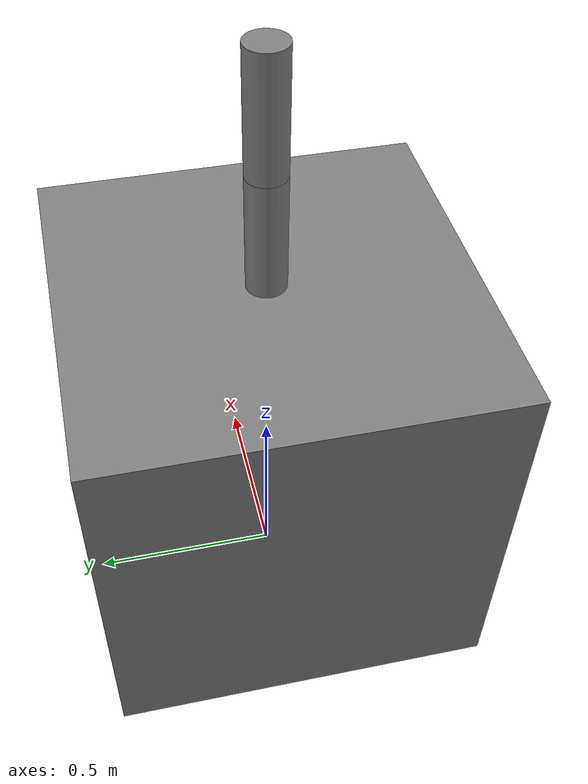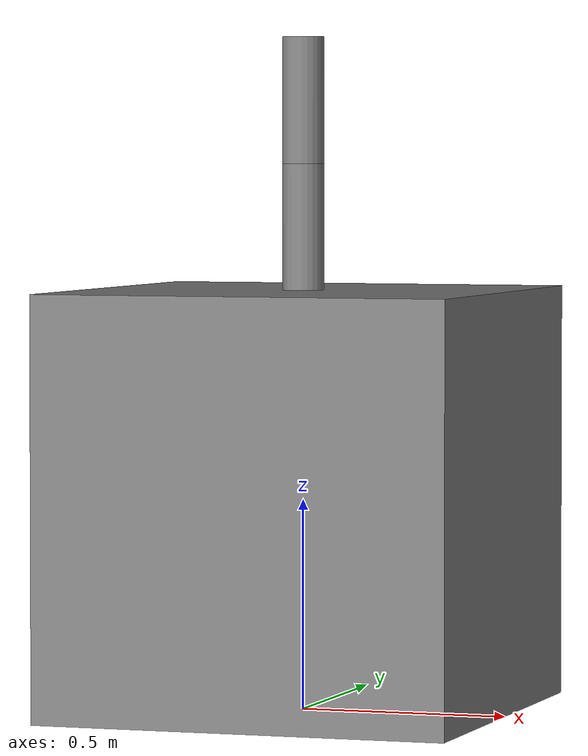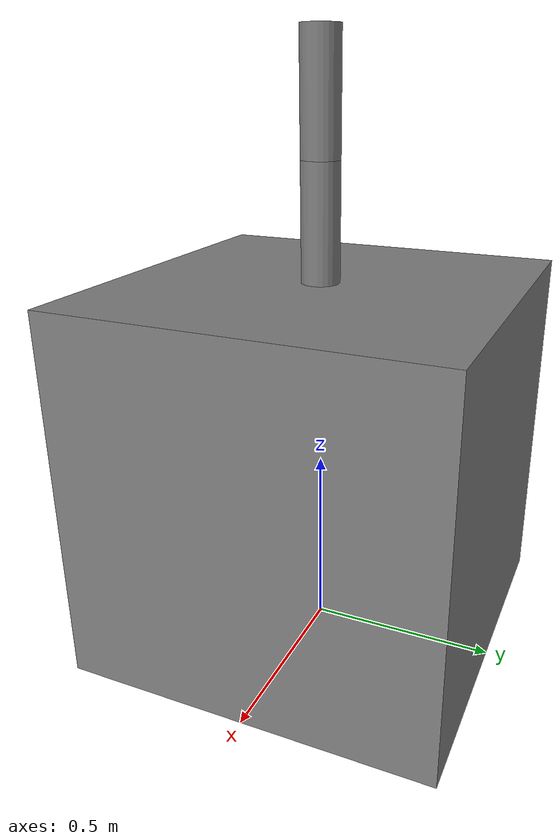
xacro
<?xml version="1.0"?>
<robot name="shock" xmlns:xacro="http://www.ros.org/wiki/xacro">

  <!-- Degree-to-radian conversions -->
  <xacro:property name="degrees_45" value="0.785398163"/>
  <xacro:property name="degrees_90" value="1.57079633"/>

  <xacro:property name="box_size" value="1" />
  <xacro:property name="shock_lower_len" value="0.30" />
  <xacro:property name="shock_lower_diam" value="0.10" />
  <xacro:property name="shock_upper_len" value="0.30" />
  <xacro:property name="shock_upper_diam" value="0.10" />

  <xacro:property name="shock_eff_limit" value="20"/>
  <xacro:property name="shock_vel_limit" value="1000"/>
  <xacro:property name="wheel_travel" value="0.30"/>

	<material name="chassis_mat">
		<color rgba="0.5 0.5 0.5 1"/>
	</material>
	<material name="tire_mat">
		<color rgba="0 0 0 1"/>
	</material>

  <!-- Inertia of a solid cuboid. Width is measured along the x axis, depth
       along the y axis, and height along the z axis. -->
  <xacro:macro name="solid_cuboid_inertial"
               params="width depth height mass *origin">
    <inertial>
      <xacro:insert_block name="origin"/>
      <mass value="${mass}"/>
      <inertia ixx="${mass * (depth * depth + height * height) / 12}"
               ixy="0" ixz="0"
               iyy="${mass * (width * width + height * height) / 12}"
               iyz="0"
               izz="${mass * (width * width + depth * depth) / 12}"/>
    </inertial>
  </xacro:macro>

  <xacro:macro name="thick_walled_tube_inertial"
               params="inner_rad outer_rad height mass">
    <inertial>
      <mass value="${mass}"/>
      <inertia ixx="${(1 / 12) * mass * (3 * (inner_rad * inner_rad +
                    outer_rad * outer_rad) + height * height)}"
               ixy="0" ixz="0"
               iyy="${(1 / 12) * mass * (3 * (inner_rad * inner_rad +
                    outer_rad * outer_rad) + height * height)}"
               iyz="0"
               izz="${mass * (inner_rad * inner_rad +
                    outer_rad * outer_rad) / 2}"/>
    </inertial>
  </xacro:macro>

  <!-- Shock absorber -->
  <xacro:macro name="create_shock">

	  <!-- Cylinder -->
	  <link name="shock_lower">
	    <visual>
	      <origin xyz="0 0 0"/>
	      <geometry>
	        <cylinder radius="${shock_lower_diam/2}" length="${shock_lower_len}"/>
	      </geometry>
	      <material name="chassis_mat"/>
	    </visual>
	    <collision>
	      <origin xyz="0 0 0"/>
	      <geometry>
	        <cylinder radius="${shock_lower_diam/2}" length="${shock_lower_len}"/>
	      </geometry>
	    </collision>
	    <xacro:thick_walled_tube_inertial
	        inner_rad="${shock_lower_diam/2 - 0.01}" outer_rad="${shock_lower_diam/2}"
	        height="${shock_lower_len}" mass="1">
	    </xacro:thick_walled_tube_inertial>
	  </link>
	  <gazebo reference="shock_lower">
	    <material>Gazebo/Grey</material>
	  </gazebo>

	  <link name="shock_upper">
	    <visual>
	      <origin xyz="0 0 0"/>
	      <geometry>
	        <cylinder radius="${shock_upper_diam/2}" length="${shock_upper_len}"/>
	      </geometry>
	      <material name="chassis_mat"/>
	    </visual>
	    <collision>
	      <origin xyz="0 0 0"/>
	      <geometry>
	        <cylinder radius="${shock_upper_diam/2}" length="${shock_upper_len}"/>
	      </geometry>
	    </collision>
	    <xacro:thick_walled_tube_inertial
	        inner_rad="${shock_upper_diam/2 - 0.01}" outer_rad="${shock_upper_diam/2}"
	        height="${shock_upper_len}" mass="1">
	    </xacro:thick_walled_tube_inertial>
	  </link>
	  <gazebo reference="shock_upper">
	    <material>Gazebo/Grey</material>
	  </gazebo>

	    <joint name="shock_absorber" type="prismatic">
	      <parent link="shock_lower"/>
	      <child link="shock_upper"/>
	      <origin xyz="0 0 ${shock_lower_len/2 + shock_upper_len/2}" />
	      <axis xyz="0 0 -1"/>
	      <limit lower="${-wheel_travel / 2}" upper="${wheel_travel / 2}"
	             effort="${shock_eff_limit}" velocity="${shock_vel_limit}"/>
	    </joint>

	    <joint name="shock_base_block" type="fixed">
	      <parent link="base_block"/>
	      <child link="shock_lower"/>
	  	  <origin xyz="0 0 ${box_size + shock_lower_len/2}" rpy="0 0 0" />
	    </joint>

	    <transmission name="shock_absorber_trans">
	      <type>transmission_interface/SimpleTransmission</type>
	      <joint name="shock_absorber">
	        <hardwareInterface>EffortJointInterface</hardwareInterface>
	      </joint>
	      <actuator name="shock_absorber_act">
	        <!-- This hardwareInterface element exists for compatibility
	             with ROS Hydro. -->
	        <hardwareInterface>EffortJointInterface</hardwareInterface>
	        <mechanicalReduction>1</mechanicalReduction>
	      </actuator>
	    </transmission>

  </xacro:macro>

  <!-- Base Block -->
  <link name="base_block">
    <visual>
      <origin xyz="0 0 ${box_size/2}"/>
      <geometry>
        <box size="${box_size} ${box_size} ${box_size}"/>
      </geometry>
      <material name="chassis_mat"/>
    </visual>
    <collision>
      <origin xyz="0 0 ${box_size/2}"/>
      <geometry>
        <box size="${box_size} ${box_size} ${box_size}"/>
      </geometry>
    </collision>
    <xacro:solid_cuboid_inertial
        width="${box_size}" depth="${box_size}"
        height="${box_size}" mass="100">
      <origin />
    </xacro:solid_cuboid_inertial>
  </link>
  <gazebo reference="base_block">
    <material>Gazebo/Grey</material>
  </gazebo>

  <!-- Create Schock -->
  <xacro:create_shock/>

  <gazebo>
    <plugin name="gazebo_ros_control" filename="libgazebo_ros_control.so"/>
  </gazebo>

</robot>
